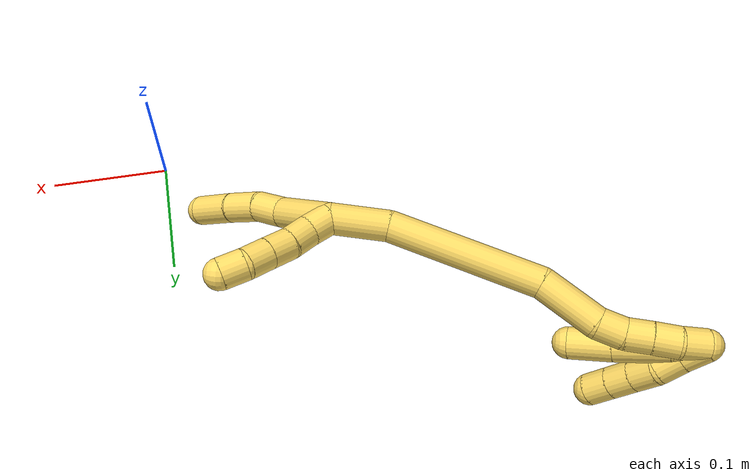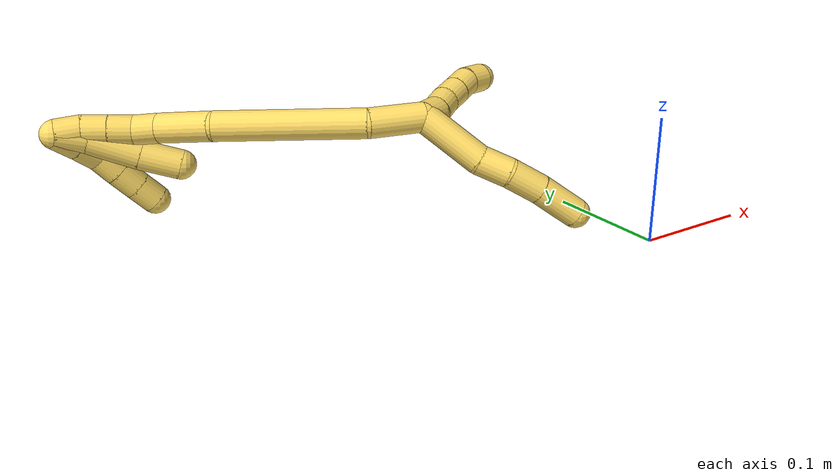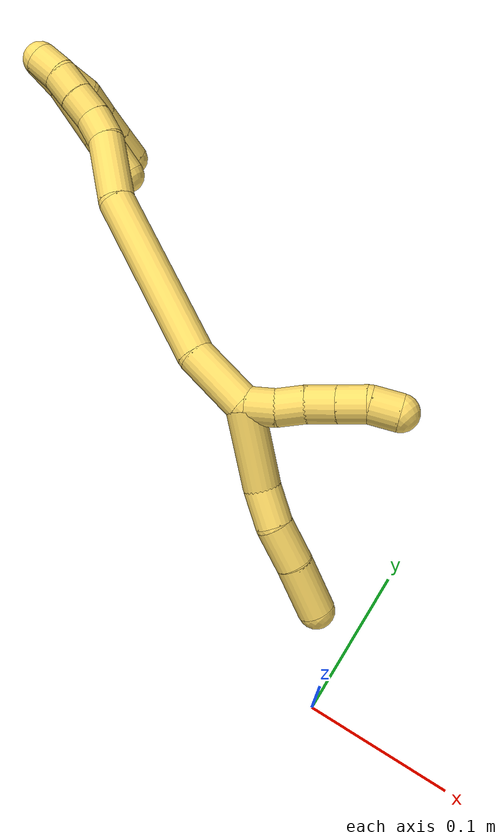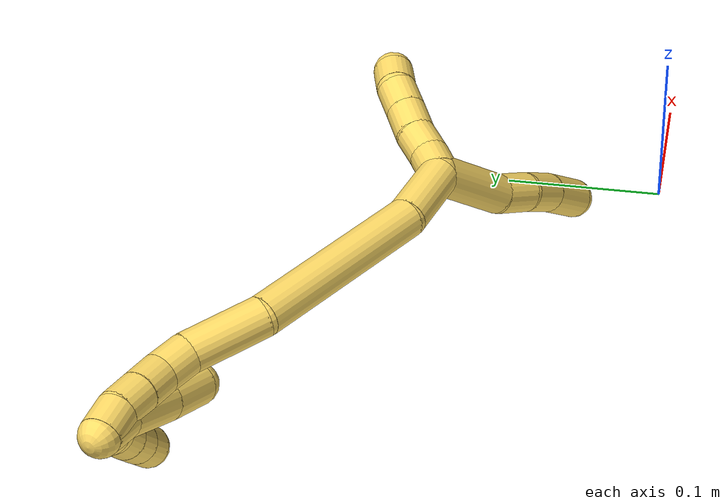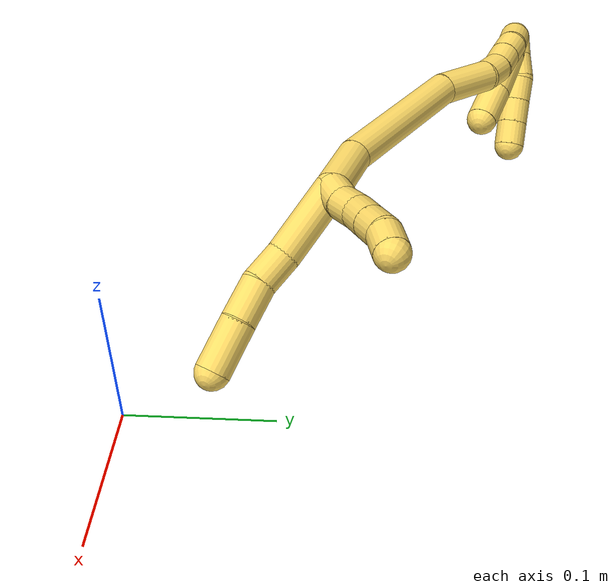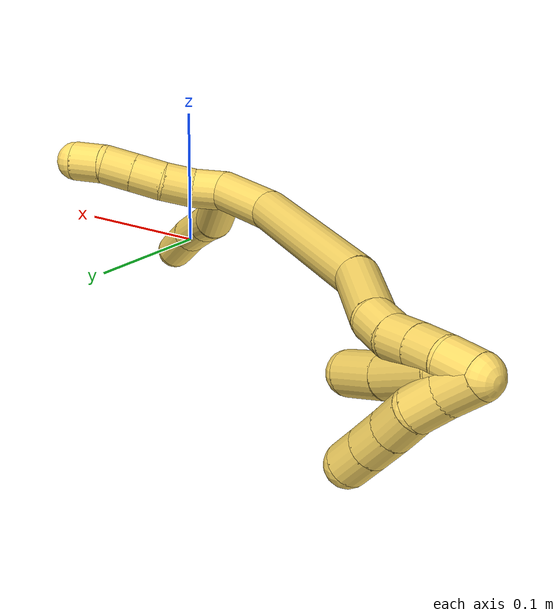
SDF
<sdf version="1.7">
 <world name="default">
  <model name="5">
   <static>0</static>
   <link name="5">
    <collision name="collision-cylinder-e_1_2_8">
     <pose>-0.001545 -0.018643 -0.021332 2.42337 -0.054493 -0.144946</pose>
     <geometry><cylinder><radius>0.0125</radius><length>0.056744</length></cylinder></geometry>
     <surface>
      <friction><ode><mu>1.16</mu><mu2>1.16</mu2><slip1>0</slip1><slip2>0</slip2></ode></friction>
      <contact><ode><kp>1e+06</kp><kd>1</kd><max_vel>0</max_vel><min_depth>0.001</min_depth></ode></contact>
     </surface>
    </collision>
    <visual name="visual-cylinder-e_1_2_8">
     <pose>-0.001545 -0.018643 -0.021332 2.42337 -0.054493 -0.144946</pose>
     <geometry><cylinder><radius>0.0125</radius><length>0.056744</length></cylinder></geometry>
     <material><ambient>1 0.858824 0.4 1</ambient></material>
    </visual>
    <collision name="collision-cylinder-e_2_8_9">
     <pose>-0.002197 -0.043506 -0.054179 2.64631 0.068202 0.268238</pose>
     <geometry><cylinder><radius>0.0125</radius><length>0.026238</length></cylinder></geometry>
     <surface>
      <friction><ode><mu>1.16</mu><mu2>1.16</mu2><slip1>0</slip1><slip2>0</slip2></ode></friction>
      <contact><ode><kp>1e+06</kp><kd>1</kd><max_vel>0</max_vel><min_depth>0.001</min_depth></ode></contact>
     </surface>
    </collision>
    <visual name="visual-cylinder-e_2_8_9">
     <pose>-0.002197 -0.043506 -0.054179 2.64631 0.068202 0.268238</pose>
     <geometry><cylinder><radius>0.0125</radius><length>0.026238</length></cylinder></geometry>
     <material><ambient>1 0.858824 0.4 1</ambient></material>
    </visual>
    <collision name="collision-cylinder-e_3_9_10">
     <pose>-0.003573 -0.056381 -0.078698 2.66857 -0.154173 -0.620252</pose>
     <geometry><cylinder><radius>0.0125</radius><length>0.029564</length></cylinder></geometry>
     <surface>
      <friction><ode><mu>1.16</mu><mu2>1.16</mu2><slip1>0</slip1><slip2>0</slip2></ode></friction>
      <contact><ode><kp>1e+06</kp><kd>1</kd><max_vel>0</max_vel><min_depth>0.001</min_depth></ode></contact>
     </surface>
    </collision>
    <visual name="visual-cylinder-e_3_9_10">
     <pose>-0.003573 -0.056381 -0.078698 2.66857 -0.154173 -0.620252</pose>
     <geometry><cylinder><radius>0.0125</radius><length>0.029564</length></cylinder></geometry>
     <material><ambient>1 0.858824 0.4 1</ambient></material>
    </visual>
    <collision name="collision-cylinder-e_4_10_6">
     <pose>-0.009367 -0.072792 -0.107292 2.58245 -0.189347 -0.638857</pose>
     <geometry><cylinder><radius>0.0125</radius><length>0.037454</length></cylinder></geometry>
     <surface>
      <friction><ode><mu>1.16</mu><mu2>1.16</mu2><slip1>0</slip1><slip2>0</slip2></ode></friction>
      <contact><ode><kp>1e+06</kp><kd>1</kd><max_vel>0</max_vel><min_depth>0.001</min_depth></ode></contact>
     </surface>
    </collision>
    <visual name="visual-cylinder-e_4_10_6">
     <pose>-0.009367 -0.072792 -0.107292 2.58245 -0.189347 -0.638857</pose>
     <geometry><cylinder><radius>0.0125</radius><length>0.037454</length></cylinder></geometry>
     <material><ambient>1 0.858824 0.4 1</ambient></material>
    </visual>
    <collision name="collision-cylinder-e_1_2_11">
     <pose>-0.004869 0.004796 -0.0073 -2.56032 -0.508544 1.43074</pose>
     <geometry><cylinder><radius>0.0125</radius><length>0.02</length></cylinder></geometry>
     <surface>
      <friction><ode><mu>1.16</mu><mu2>1.16</mu2><slip1>0</slip1><slip2>0</slip2></ode></friction>
      <contact><ode><kp>1e+06</kp><kd>1</kd><max_vel>0</max_vel><min_depth>0.001</min_depth></ode></contact>
     </surface>
    </collision>
    <visual name="visual-cylinder-e_1_2_11">
     <pose>-0.004869 0.004796 -0.0073 -2.56032 -0.508544 1.43074</pose>
     <geometry><cylinder><radius>0.0125</radius><length>0.02</length></cylinder></geometry>
     <material><ambient>1 0.858824 0.4 1</ambient></material>
    </visual>
    <collision name="collision-cylinder-e_2_11_12">
     <pose>-0.014234 0.016295 -0.020504 -2.29293 -0.466352 0.967974</pose>
     <geometry><cylinder><radius>0.0125</radius><length>0.02</length></cylinder></geometry>
     <surface>
      <friction><ode><mu>1.16</mu><mu2>1.16</mu2><slip1>0</slip1><slip2>0</slip2></ode></friction>
      <contact><ode><kp>1e+06</kp><kd>1</kd><max_vel>0</max_vel><min_depth>0.001</min_depth></ode></contact>
     </surface>
    </collision>
    <visual name="visual-cylinder-e_2_11_12">
     <pose>-0.014234 0.016295 -0.020504 -2.29293 -0.466352 0.967974</pose>
     <geometry><cylinder><radius>0.0125</radius><length>0.02</length></cylinder></geometry>
     <material><ambient>1 0.858824 0.4 1</ambient></material>
    </visual>
    <collision name="collision-cylinder-e_3_12_13">
     <pose>-0.022191 0.029347 -0.033315 -2.39824 -0.353363 0.859045</pose>
     <geometry><cylinder><radius>0.0125</radius><length>0.02</length></cylinder></geometry>
     <surface>
      <friction><ode><mu>1.16</mu><mu2>1.16</mu2><slip1>0</slip1><slip2>0</slip2></ode></friction>
      <contact><ode><kp>1e+06</kp><kd>1</kd><max_vel>0</max_vel><min_depth>0.001</min_depth></ode></contact>
     </surface>
    </collision>
    <visual name="visual-cylinder-e_3_12_13">
     <pose>-0.022191 0.029347 -0.033315 -2.39824 -0.353363 0.859045</pose>
     <geometry><cylinder><radius>0.0125</radius><length>0.02</length></cylinder></geometry>
     <material><ambient>1 0.858824 0.4 1</ambient></material>
    </visual>
    <collision name="collision-cylinder-e_4_13_14">
     <pose>-0.029188 0.042093 -0.047047 -2.38863 -0.361477 0.865941</pose>
     <geometry><cylinder><radius>0.0125</radius><length>0.02</length></cylinder></geometry>
     <surface>
      <friction><ode><mu>1.16</mu><mu2>1.16</mu2><slip1>0</slip1><slip2>0</slip2></ode></friction>
      <contact><ode><kp>1e+06</kp><kd>1</kd><max_vel>0</max_vel><min_depth>0.001</min_depth></ode></contact>
     </surface>
    </collision>
    <visual name="visual-cylinder-e_4_13_14">
     <pose>-0.029188 0.042093 -0.047047 -2.38863 -0.361477 0.865941</pose>
     <geometry><cylinder><radius>0.0125</radius><length>0.02</length></cylinder></geometry>
     <material><ambient>1 0.858824 0.4 1</ambient></material>
    </visual>
    <collision name="collision-cylinder-e_5_14_5">
     <pose>-0.036551 0.052197 -0.062335 -2.72857 -0.392652 1.51885</pose>
     <geometry><cylinder><radius>0.0125</radius><length>0.02</length></cylinder></geometry>
     <surface>
      <friction><ode><mu>1.16</mu><mu2>1.16</mu2><slip1>0</slip1><slip2>0</slip2></ode></friction>
      <contact><ode><kp>1e+06</kp><kd>1</kd><max_vel>0</max_vel><min_depth>0.001</min_depth></ode></contact>
     </surface>
    </collision>
    <visual name="visual-cylinder-e_5_14_5">
     <pose>-0.036551 0.052197 -0.062335 -2.72857 -0.392652 1.51885</pose>
     <geometry><cylinder><radius>0.0125</radius><length>0.02</length></cylinder></geometry>
     <material><ambient>1 0.858824 0.4 1</ambient></material>
    </visual>
    <collision name="collision-cylinder-e_1_2_15">
     <pose>-0.001291 -0.001936 0.02315 0.08345 -0.055517 -0.002318</pose>
     <geometry><cylinder><radius>0.0125</radius><length>0.046533</length></cylinder></geometry>
     <surface>
      <friction><ode><mu>1.16</mu><mu2>1.16</mu2><slip1>0</slip1><slip2>0</slip2></ode></friction>
      <contact><ode><kp>1e+06</kp><kd>1</kd><max_vel>0</max_vel><min_depth>0.001</min_depth></ode></contact>
     </surface>
    </collision>
    <visual name="visual-cylinder-e_1_2_15">
     <pose>-0.001291 -0.001936 0.02315 0.08345 -0.055517 -0.002318</pose>
     <geometry><cylinder><radius>0.0125</radius><length>0.046533</length></cylinder></geometry>
     <material><ambient>1 0.858824 0.4 1</ambient></material>
    </visual>
    <collision name="collision-cylinder-e_2_15_16">
     <pose>-0.018307 0.002634 0.105438 -0.10958 -0.258397 0.014251</pose>
     <geometry><cylinder><radius>0.0125</radius><length>0.123076</length></cylinder></geometry>
     <surface>
      <friction><ode><mu>1.16</mu><mu2>1.16</mu2><slip1>0</slip1><slip2>0</slip2></ode></friction>
      <contact><ode><kp>1e+06</kp><kd>1</kd><max_vel>0</max_vel><min_depth>0.001</min_depth></ode></contact>
     </surface>
    </collision>
    <visual name="visual-cylinder-e_2_15_16">
     <pose>-0.018307 0.002634 0.105438 -0.10958 -0.258397 0.014251</pose>
     <geometry><cylinder><radius>0.0125</radius><length>0.123076</length></cylinder></geometry>
     <material><ambient>1 0.858824 0.4 1</ambient></material>
    </visual>
    <collision name="collision-cylinder-e_3_16_17">
     <pose>-0.046334 0.013952 0.18544 -0.22668 -0.521509 0.060726</pose>
     <geometry><cylinder><radius>0.0125</radius><length>0.049389</length></cylinder></geometry>
     <surface>
      <friction><ode><mu>1.16</mu><mu2>1.16</mu2><slip1>0</slip1><slip2>0</slip2></ode></friction>
      <contact><ode><kp>1e+06</kp><kd>1</kd><max_vel>0</max_vel><min_depth>0.001</min_depth></ode></contact>
     </surface>
    </collision>
    <visual name="visual-cylinder-e_3_16_17">
     <pose>-0.046334 0.013952 0.18544 -0.22668 -0.521509 0.060726</pose>
     <geometry><cylinder><radius>0.0125</radius><length>0.049389</length></cylinder></geometry>
     <material><ambient>1 0.858824 0.4 1</ambient></material>
    </visual>
    <collision name="collision-cylinder-e_4_17_18">
     <pose>-0.061596 0.019317 0.216317 -0.055127 -0.286908 0.007965</pose>
     <geometry><cylinder><radius>0.0125</radius><length>0.020912</length></cylinder></geometry>
     <surface>
      <friction><ode><mu>1.16</mu><mu2>1.16</mu2><slip1>0</slip1><slip2>0</slip2></ode></friction>
      <contact><ode><kp>1e+06</kp><kd>1</kd><max_vel>0</max_vel><min_depth>0.001</min_depth></ode></contact>
     </surface>
    </collision>
    <visual name="visual-cylinder-e_4_17_18">
     <pose>-0.061596 0.019317 0.216317 -0.055127 -0.286908 0.007965</pose>
     <geometry><cylinder><radius>0.0125</radius><length>0.020912</length></cylinder></geometry>
     <material><ambient>1 0.858824 0.4 1</ambient></material>
    </visual>
    <collision name="collision-cylinder-e_5_18_19">
     <pose>-0.065022 0.020425 0.236331 -0.05546 -0.0466 0.001293</pose>
     <geometry><cylinder><radius>0.0125</radius><length>0.020053</length></cylinder></geometry>
     <surface>
      <friction><ode><mu>1.16</mu><mu2>1.16</mu2><slip1>0</slip1><slip2>0</slip2></ode></friction>
      <contact><ode><kp>1e+06</kp><kd>1</kd><max_vel>0</max_vel><min_depth>0.001</min_depth></ode></contact>
     </surface>
    </collision>
    <visual name="visual-cylinder-e_5_18_19">
     <pose>-0.065022 0.020425 0.236331 -0.05546 -0.0466 0.001293</pose>
     <geometry><cylinder><radius>0.0125</radius><length>0.020053</length></cylinder></geometry>
     <material><ambient>1 0.858824 0.4 1</ambient></material>
    </visual>
    <collision name="collision-cylinder-e_6_19_20">
     <pose>-0.06627 0.02143 0.256309 -0.045042 -0.078071 0.001759</pose>
     <geometry><cylinder><radius>0.0125</radius><length>0.020037</length></cylinder></geometry>
     <surface>
      <friction><ode><mu>1.16</mu><mu2>1.16</mu2><slip1>0</slip1><slip2>0</slip2></ode></friction>
      <contact><ode><kp>1e+06</kp><kd>1</kd><max_vel>0</max_vel><min_depth>0.001</min_depth></ode></contact>
     </surface>
    </collision>
    <visual name="visual-cylinder-e_6_19_20">
     <pose>-0.06627 0.02143 0.256309 -0.045042 -0.078071 0.001759</pose>
     <geometry><cylinder><radius>0.0125</radius><length>0.020037</length></cylinder></geometry>
     <material><ambient>1 0.858824 0.4 1</ambient></material>
    </visual>
    <collision name="collision-cylinder-e_7_20_1">
     <pose>-0.067399 0.02025 0.276147 0.163807 -0.034815 -0.002858</pose>
     <geometry><cylinder><radius>0.0125</radius><length>0.02</length></cylinder></geometry>
     <surface>
      <friction><ode><mu>1.16</mu><mu2>1.16</mu2><slip1>0</slip1><slip2>0</slip2></ode></friction>
      <contact><ode><kp>1e+06</kp><kd>1</kd><max_vel>0</max_vel><min_depth>0.001</min_depth></ode></contact>
     </surface>
    </collision>
    <visual name="visual-cylinder-e_7_20_1">
     <pose>-0.067399 0.02025 0.276147 0.163807 -0.034815 -0.002858</pose>
     <geometry><cylinder><radius>0.0125</radius><length>0.02</length></cylinder></geometry>
     <material><ambient>1 0.858824 0.4 1</ambient></material>
    </visual>
    <collision name="collision-cylinder-e_1_1_21">
     <pose>-0.069824 0.017206 0.274048 3.02392 -0.170767 -1.9361</pose>
     <geometry><cylinder><radius>0.0125</radius><length>0.024442</length></cylinder></geometry>
     <surface>
      <friction><ode><mu>1.16</mu><mu2>1.16</mu2><slip1>0</slip1><slip2>0</slip2></ode></friction>
      <contact><ode><kp>1e+06</kp><kd>1</kd><max_vel>0</max_vel><min_depth>0.001</min_depth></ode></contact>
     </surface>
    </collision>
    <visual name="visual-cylinder-e_1_1_21">
     <pose>-0.069824 0.017206 0.274048 3.02392 -0.170767 -1.9361</pose>
     <geometry><cylinder><radius>0.0125</radius><length>0.024442</length></cylinder></geometry>
     <material><ambient>1 0.858824 0.4 1</ambient></material>
    </visual>
    <collision name="collision-cylinder-e_2_21_22">
     <pose>-0.075071 0.009613 0.242188 2.84051 -0.150957 -0.924959</pose>
     <geometry><cylinder><radius>0.0125</radius><length>0.042154</length></cylinder></geometry>
     <surface>
      <friction><ode><mu>1.16</mu><mu2>1.16</mu2><slip1>0</slip1><slip2>0</slip2></ode></friction>
      <contact><ode><kp>1e+06</kp><kd>1</kd><max_vel>0</max_vel><min_depth>0.001</min_depth></ode></contact>
     </surface>
    </collision>
    <visual name="visual-cylinder-e_2_21_22">
     <pose>-0.075071 0.009613 0.242188 2.84051 -0.150957 -0.924959</pose>
     <geometry><cylinder><radius>0.0125</radius><length>0.042154</length></cylinder></geometry>
     <material><ambient>1 0.858824 0.4 1</ambient></material>
    </visual>
    <collision name="collision-cylinder-e_3_22_4">
     <pose>-0.079729 -0.00071 0.206176 2.88985 -0.089237 -0.6784</pose>
     <geometry><cylinder><radius>0.0125</radius><length>0.033404</length></cylinder></geometry>
     <surface>
      <friction><ode><mu>1.16</mu><mu2>1.16</mu2><slip1>0</slip1><slip2>0</slip2></ode></friction>
      <contact><ode><kp>1e+06</kp><kd>1</kd><max_vel>0</max_vel><min_depth>0.001</min_depth></ode></contact>
     </surface>
    </collision>
    <visual name="visual-cylinder-e_3_22_4">
     <pose>-0.079729 -0.00071 0.206176 2.88985 -0.089237 -0.6784</pose>
     <geometry><cylinder><radius>0.0125</radius><length>0.033404</length></cylinder></geometry>
     <material><ambient>1 0.858824 0.4 1</ambient></material>
    </visual>
    <collision name="collision-cylinder-e_1_1_23">
     <pose>-0.073371 0.016062 0.278144 2.82715 -0.597248 -2.19046</pose>
     <geometry><cylinder><radius>0.0125</radius><length>0.02</length></cylinder></geometry>
     <surface>
      <friction><ode><mu>1.16</mu><mu2>1.16</mu2><slip1>0</slip1><slip2>0</slip2></ode></friction>
      <contact><ode><kp>1e+06</kp><kd>1</kd><max_vel>0</max_vel><min_depth>0.001</min_depth></ode></contact>
     </surface>
    </collision>
    <visual name="visual-cylinder-e_1_1_23">
     <pose>-0.073371 0.016062 0.278144 2.82715 -0.597248 -2.19046</pose>
     <geometry><cylinder><radius>0.0125</radius><length>0.02</length></cylinder></geometry>
     <material><ambient>1 0.858824 0.4 1</ambient></material>
    </visual>
    <collision name="collision-cylinder-e_2_23_24">
     <pose>-0.085207 0.01093 0.262879 2.80682 -0.670295 -2.23822</pose>
     <geometry><cylinder><radius>0.0125</radius><length>0.02</length></cylinder></geometry>
     <surface>
      <friction><ode><mu>1.16</mu><mu2>1.16</mu2><slip1>0</slip1><slip2>0</slip2></ode></friction>
      <contact><ode><kp>1e+06</kp><kd>1</kd><max_vel>0</max_vel><min_depth>0.001</min_depth></ode></contact>
     </surface>
    </collision>
    <visual name="visual-cylinder-e_2_23_24">
     <pose>-0.085207 0.01093 0.262879 2.80682 -0.670295 -2.23822</pose>
     <geometry><cylinder><radius>0.0125</radius><length>0.02</length></cylinder></geometry>
     <material><ambient>1 0.858824 0.4 1</ambient></material>
    </visual>
    <collision name="collision-cylinder-e_3_24_25">
     <pose>-0.09627 0.003199 0.248415 2.51101 -0.506395 -1.34128</pose>
     <geometry><cylinder><radius>0.0125</radius><length>0.02</length></cylinder></geometry>
     <surface>
      <friction><ode><mu>1.16</mu><mu2>1.16</mu2><slip1>0</slip1><slip2>0</slip2></ode></friction>
      <contact><ode><kp>1e+06</kp><kd>1</kd><max_vel>0</max_vel><min_depth>0.001</min_depth></ode></contact>
     </surface>
    </collision>
    <visual name="visual-cylinder-e_3_24_25">
     <pose>-0.09627 0.003199 0.248415 2.51101 -0.506395 -1.34128</pose>
     <geometry><cylinder><radius>0.0125</radius><length>0.02</length></cylinder></geometry>
     <material><ambient>1 0.858824 0.4 1</ambient></material>
    </visual>
    <collision name="collision-cylinder-e_4_25_26">
     <pose>-0.106018 -0.006798 0.234101 2.55288 -0.511877 -1.42416</pose>
     <geometry><cylinder><radius>0.0125</radius><length>0.02</length></cylinder></geometry>
     <surface>
      <friction><ode><mu>1.16</mu><mu2>1.16</mu2><slip1>0</slip1><slip2>0</slip2></ode></friction>
      <contact><ode><kp>1e+06</kp><kd>1</kd><max_vel>0</max_vel><min_depth>0.001</min_depth></ode></contact>
     </surface>
    </collision>
    <visual name="visual-cylinder-e_4_25_26">
     <pose>-0.106018 -0.006798 0.234101 2.55288 -0.511877 -1.42416</pose>
     <geometry><cylinder><radius>0.0125</radius><length>0.02</length></cylinder></geometry>
     <material><ambient>1 0.858824 0.4 1</ambient></material>
    </visual>
    <collision name="collision-cylinder-e_5_26_3">
     <pose>-0.11583 -0.016406 0.219561 2.56236 -0.513704 -1.4449</pose>
     <geometry><cylinder><radius>0.0125</radius><length>0.02</length></cylinder></geometry>
     <surface>
      <friction><ode><mu>1.16</mu><mu2>1.16</mu2><slip1>0</slip1><slip2>0</slip2></ode></friction>
      <contact><ode><kp>1e+06</kp><kd>1</kd><max_vel>0</max_vel><min_depth>0.001</min_depth></ode></contact>
     </surface>
    </collision>
    <visual name="visual-cylinder-e_5_26_3">
     <pose>-0.11583 -0.016406 0.219561 2.56236 -0.513704 -1.4449</pose>
     <geometry><cylinder><radius>0.0125</radius><length>0.02</length></cylinder></geometry>
     <material><ambient>1 0.858824 0.4 1</ambient></material>
    </visual>
    <collision name="collision-sphere-3">
     <pose>-0.120744 -0.021174 0.212273 0 -0 0</pose>
     <geometry><sphere><radius>0.0125</radius></sphere></geometry>
     <surface>
      <friction><ode><mu>1.16</mu><mu2>1.16</mu2><slip1>0</slip1><slip2>0</slip2></ode></friction>
      <contact><ode><kp>1e+06</kp><kd>1</kd><max_vel>0</max_vel><min_depth>0.001</min_depth></ode></contact>
     </surface>
    </collision>
    <visual name="visual-sphere-3">
     <pose>-0.120744 -0.021174 0.212273 0 -0 0</pose>
     <geometry><sphere><radius>0.0125</radius></sphere></geometry>
     <material><ambient>1 0.858824 0.4 1</ambient></material>
    </visual>
    <collision name="collision-sphere-26">
     <pose>-0.110916 -0.011639 0.22685 0 -0 0</pose>
     <geometry><sphere><radius>0.0125</radius></sphere></geometry>
     <surface>
      <friction><ode><mu>1.16</mu><mu2>1.16</mu2><slip1>0</slip1><slip2>0</slip2></ode></friction>
      <contact><ode><kp>1e+06</kp><kd>1</kd><max_vel>0</max_vel><min_depth>0.001</min_depth></ode></contact>
     </surface>
    </collision>
    <visual name="visual-sphere-26">
     <pose>-0.110916 -0.011639 0.22685 0 -0 0</pose>
     <geometry><sphere><radius>0.0125</radius></sphere></geometry>
     <material><ambient>1 0.858824 0.4 1</ambient></material>
    </visual>
    <collision name="collision-sphere-25">
     <pose>-0.10112 -0.001957 0.241351 0 -0 0</pose>
     <geometry><sphere><radius>0.0125</radius></sphere></geometry>
     <surface>
      <friction><ode><mu>1.16</mu><mu2>1.16</mu2><slip1>0</slip1><slip2>0</slip2></ode></friction>
      <contact><ode><kp>1e+06</kp><kd>1</kd><max_vel>0</max_vel><min_depth>0.001</min_depth></ode></contact>
     </surface>
    </collision>
    <visual name="visual-sphere-25">
     <pose>-0.10112 -0.001957 0.241351 0 -0 0</pose>
     <geometry><sphere><radius>0.0125</radius></sphere></geometry>
     <material><ambient>1 0.858824 0.4 1</ambient></material>
    </visual>
    <collision name="collision-sphere-24">
     <pose>-0.091419 0.008356 0.255478 0 -0 0</pose>
     <geometry><sphere><radius>0.0125</radius></sphere></geometry>
     <surface>
      <friction><ode><mu>1.16</mu><mu2>1.16</mu2><slip1>0</slip1><slip2>0</slip2></ode></friction>
      <contact><ode><kp>1e+06</kp><kd>1</kd><max_vel>0</max_vel><min_depth>0.001</min_depth></ode></contact>
     </surface>
    </collision>
    <visual name="visual-sphere-24">
     <pose>-0.091419 0.008356 0.255478 0 -0 0</pose>
     <geometry><sphere><radius>0.0125</radius></sphere></geometry>
     <material><ambient>1 0.858824 0.4 1</ambient></material>
    </visual>
    <collision name="collision-sphere-23">
     <pose>-0.078995 0.013505 0.27028 0 -0 0</pose>
     <geometry><sphere><radius>0.0125</radius></sphere></geometry>
     <surface>
      <friction><ode><mu>1.16</mu><mu2>1.16</mu2><slip1>0</slip1><slip2>0</slip2></ode></friction>
      <contact><ode><kp>1e+06</kp><kd>1</kd><max_vel>0</max_vel><min_depth>0.001</min_depth></ode></contact>
     </surface>
    </collision>
    <visual name="visual-sphere-23">
     <pose>-0.078995 0.013505 0.27028 0 -0 0</pose>
     <geometry><sphere><radius>0.0125</radius></sphere></geometry>
     <material><ambient>1 0.858824 0.4 1</ambient></material>
    </visual>
    <collision name="collision-sphere-4">
     <pose>-0.081217 -0.004854 0.190065 0 -0 0</pose>
     <geometry><sphere><radius>0.0125</radius></sphere></geometry>
     <surface>
      <friction><ode><mu>1.16</mu><mu2>1.16</mu2><slip1>0</slip1><slip2>0</slip2></ode></friction>
      <contact><ode><kp>1e+06</kp><kd>1</kd><max_vel>0</max_vel><min_depth>0.001</min_depth></ode></contact>
     </surface>
    </collision>
    <visual name="visual-sphere-4">
     <pose>-0.081217 -0.004854 0.190065 0 -0 0</pose>
     <geometry><sphere><radius>0.0125</radius></sphere></geometry>
     <material><ambient>1 0.858824 0.4 1</ambient></material>
    </visual>
    <collision name="collision-sphere-22">
     <pose>-0.07824 0.003434 0.222288 0 -0 0</pose>
     <geometry><sphere><radius>0.0125</radius></sphere></geometry>
     <surface>
      <friction><ode><mu>1.16</mu><mu2>1.16</mu2><slip1>0</slip1><slip2>0</slip2></ode></friction>
      <contact><ode><kp>1e+06</kp><kd>1</kd><max_vel>0</max_vel><min_depth>0.001</min_depth></ode></contact>
     </surface>
    </collision>
    <visual name="visual-sphere-22">
     <pose>-0.07824 0.003434 0.222288 0 -0 0</pose>
     <geometry><sphere><radius>0.0125</radius></sphere></geometry>
     <material><ambient>1 0.858824 0.4 1</ambient></material>
    </visual>
    <collision name="collision-sphere-21">
     <pose>-0.071901 0.015792 0.262088 0 -0 0</pose>
     <geometry><sphere><radius>0.0125</radius></sphere></geometry>
     <surface>
      <friction><ode><mu>1.16</mu><mu2>1.16</mu2><slip1>0</slip1><slip2>0</slip2></ode></friction>
      <contact><ode><kp>1e+06</kp><kd>1</kd><max_vel>0</max_vel><min_depth>0.001</min_depth></ode></contact>
     </surface>
    </collision>
    <visual name="visual-sphere-21">
     <pose>-0.071901 0.015792 0.262088 0 -0 0</pose>
     <geometry><sphere><radius>0.0125</radius></sphere></geometry>
     <material><ambient>1 0.858824 0.4 1</ambient></material>
    </visual>
    <collision name="collision-sphere-1">
     <pose>-0.067748 0.01862 0.286007 0 -0 0</pose>
     <geometry><sphere><radius>0.0125</radius></sphere></geometry>
     <surface>
      <friction><ode><mu>1.16</mu><mu2>1.16</mu2><slip1>0</slip1><slip2>0</slip2></ode></friction>
      <contact><ode><kp>1e+06</kp><kd>1</kd><max_vel>0</max_vel><min_depth>0.001</min_depth></ode></contact>
     </surface>
    </collision>
    <visual name="visual-sphere-1">
     <pose>-0.067748 0.01862 0.286007 0 -0 0</pose>
     <geometry><sphere><radius>0.0125</radius></sphere></geometry>
     <material><ambient>1 0.858824 0.4 1</ambient></material>
    </visual>
    <collision name="collision-sphere-11">
     <pose>-0.009738 0.009592 -0.0146 0 -0 0</pose>
     <geometry><sphere><radius>0.0125</radius></sphere></geometry>
     <surface>
      <friction><ode><mu>1.16</mu><mu2>1.16</mu2><slip1>0</slip1><slip2>0</slip2></ode></friction>
      <contact><ode><kp>1e+06</kp><kd>1</kd><max_vel>0</max_vel><min_depth>0.001</min_depth></ode></contact>
     </surface>
    </collision>
    <visual name="visual-sphere-11">
     <pose>-0.009738 0.009592 -0.0146 0 -0 0</pose>
     <geometry><sphere><radius>0.0125</radius></sphere></geometry>
     <material><ambient>1 0.858824 0.4 1</ambient></material>
    </visual>
    <collision name="collision-sphere-6">
     <pose>-0.012892 -0.082548 -0.122883 0 -0 0</pose>
     <geometry><sphere><radius>0.0125</radius></sphere></geometry>
     <surface>
      <friction><ode><mu>1.16</mu><mu2>1.16</mu2><slip1>0</slip1><slip2>0</slip2></ode></friction>
      <contact><ode><kp>1e+06</kp><kd>1</kd><max_vel>0</max_vel><min_depth>0.001</min_depth></ode></contact>
     </surface>
    </collision>
    <visual name="visual-sphere-6">
     <pose>-0.012892 -0.082548 -0.122883 0 -0 0</pose>
     <geometry><sphere><radius>0.0125</radius></sphere></geometry>
     <material><ambient>1 0.858824 0.4 1</ambient></material>
    </visual>
    <collision name="collision-sphere-10">
     <pose>-0.005842 -0.063036 -0.091701 0 -0 0</pose>
     <geometry><sphere><radius>0.0125</radius></sphere></geometry>
     <surface>
      <friction><ode><mu>1.16</mu><mu2>1.16</mu2><slip1>0</slip1><slip2>0</slip2></ode></friction>
      <contact><ode><kp>1e+06</kp><kd>1</kd><max_vel>0</max_vel><min_depth>0.001</min_depth></ode></contact>
     </surface>
    </collision>
    <visual name="visual-sphere-10">
     <pose>-0.005842 -0.063036 -0.091701 0 -0 0</pose>
     <geometry><sphere><radius>0.0125</radius></sphere></geometry>
     <material><ambient>1 0.858824 0.4 1</ambient></material>
    </visual>
    <collision name="collision-sphere-9">
     <pose>-0.001303 -0.049727 -0.065695 0 -0 0</pose>
     <geometry><sphere><radius>0.0125</radius></sphere></geometry>
     <surface>
      <friction><ode><mu>1.16</mu><mu2>1.16</mu2><slip1>0</slip1><slip2>0</slip2></ode></friction>
      <contact><ode><kp>1e+06</kp><kd>1</kd><max_vel>0</max_vel><min_depth>0.001</min_depth></ode></contact>
     </surface>
    </collision>
    <visual name="visual-sphere-9">
     <pose>-0.001303 -0.049727 -0.065695 0 -0 0</pose>
     <geometry><sphere><radius>0.0125</radius></sphere></geometry>
     <material><ambient>1 0.858824 0.4 1</ambient></material>
    </visual>
    <collision name="collision-sphere-2">
     <geometry><sphere><radius>0.0125</radius></sphere></geometry>
     <surface>
      <friction><ode><mu>1.16</mu><mu2>1.16</mu2><slip1>0</slip1><slip2>0</slip2></ode></friction>
      <contact><ode><kp>1e+06</kp><kd>1</kd><max_vel>0</max_vel><min_depth>0.001</min_depth></ode></contact>
     </surface>
    </collision>
    <visual name="visual-sphere-2">
     <geometry><sphere><radius>0.0125</radius></sphere></geometry>
     <material><ambient>1 0.858824 0.4 1</ambient></material>
    </visual>
    <collision name="collision-sphere-19">
     <pose>-0.065489 0.02098 0.246331 0 -0 0</pose>
     <geometry><sphere><radius>0.0125</radius></sphere></geometry>
     <surface>
      <friction><ode><mu>1.16</mu><mu2>1.16</mu2><slip1>0</slip1><slip2>0</slip2></ode></friction>
      <contact><ode><kp>1e+06</kp><kd>1</kd><max_vel>0</max_vel><min_depth>0.001</min_depth></ode></contact>
     </surface>
    </collision>
    <visual name="visual-sphere-19">
     <pose>-0.065489 0.02098 0.246331 0 -0 0</pose>
     <geometry><sphere><radius>0.0125</radius></sphere></geometry>
     <material><ambient>1 0.858824 0.4 1</ambient></material>
    </visual>
    <collision name="collision-sphere-8">
     <pose>-0.003091 -0.037285 -0.042664 0 -0 0</pose>
     <geometry><sphere><radius>0.0125</radius></sphere></geometry>
     <surface>
      <friction><ode><mu>1.16</mu><mu2>1.16</mu2><slip1>0</slip1><slip2>0</slip2></ode></friction>
      <contact><ode><kp>1e+06</kp><kd>1</kd><max_vel>0</max_vel><min_depth>0.001</min_depth></ode></contact>
     </surface>
    </collision>
    <visual name="visual-sphere-8">
     <pose>-0.003091 -0.037285 -0.042664 0 -0 0</pose>
     <geometry><sphere><radius>0.0125</radius></sphere></geometry>
     <material><ambient>1 0.858824 0.4 1</ambient></material>
    </visual>
    <collision name="collision-sphere-12">
     <pose>-0.018731 0.022997 -0.026408 0 -0 0</pose>
     <geometry><sphere><radius>0.0125</radius></sphere></geometry>
     <surface>
      <friction><ode><mu>1.16</mu><mu2>1.16</mu2><slip1>0</slip1><slip2>0</slip2></ode></friction>
      <contact><ode><kp>1e+06</kp><kd>1</kd><max_vel>0</max_vel><min_depth>0.001</min_depth></ode></contact>
     </surface>
    </collision>
    <visual name="visual-sphere-12">
     <pose>-0.018731 0.022997 -0.026408 0 -0 0</pose>
     <geometry><sphere><radius>0.0125</radius></sphere></geometry>
     <material><ambient>1 0.858824 0.4 1</ambient></material>
    </visual>
    <collision name="collision-sphere-13">
     <pose>-0.025652 0.035696 -0.040222 0 -0 0</pose>
     <geometry><sphere><radius>0.0125</radius></sphere></geometry>
     <surface>
      <friction><ode><mu>1.16</mu><mu2>1.16</mu2><slip1>0</slip1><slip2>0</slip2></ode></friction>
      <contact><ode><kp>1e+06</kp><kd>1</kd><max_vel>0</max_vel><min_depth>0.001</min_depth></ode></contact>
     </surface>
    </collision>
    <visual name="visual-sphere-13">
     <pose>-0.025652 0.035696 -0.040222 0 -0 0</pose>
     <geometry><sphere><radius>0.0125</radius></sphere></geometry>
     <material><ambient>1 0.858824 0.4 1</ambient></material>
    </visual>
    <collision name="collision-sphere-14">
     <pose>-0.032725 0.048489 -0.053873 0 -0 0</pose>
     <geometry><sphere><radius>0.0125</radius></sphere></geometry>
     <surface>
      <friction><ode><mu>1.16</mu><mu2>1.16</mu2><slip1>0</slip1><slip2>0</slip2></ode></friction>
      <contact><ode><kp>1e+06</kp><kd>1</kd><max_vel>0</max_vel><min_depth>0.001</min_depth></ode></contact>
     </surface>
    </collision>
    <visual name="visual-sphere-14">
     <pose>-0.032725 0.048489 -0.053873 0 -0 0</pose>
     <geometry><sphere><radius>0.0125</radius></sphere></geometry>
     <material><ambient>1 0.858824 0.4 1</ambient></material>
    </visual>
    <collision name="collision-sphere-5">
     <pose>-0.040378 0.055905 -0.070797 0 -0 0</pose>
     <geometry><sphere><radius>0.0125</radius></sphere></geometry>
     <surface>
      <friction><ode><mu>1.16</mu><mu2>1.16</mu2><slip1>0</slip1><slip2>0</slip2></ode></friction>
      <contact><ode><kp>1e+06</kp><kd>1</kd><max_vel>0</max_vel><min_depth>0.001</min_depth></ode></contact>
     </surface>
    </collision>
    <visual name="visual-sphere-5">
     <pose>-0.040378 0.055905 -0.070797 0 -0 0</pose>
     <geometry><sphere><radius>0.0125</radius></sphere></geometry>
     <material><ambient>1 0.858824 0.4 1</ambient></material>
    </visual>
    <collision name="collision-sphere-15">
     <pose>-0.002582 -0.003873 0.046299 0 -0 0</pose>
     <geometry><sphere><radius>0.0125</radius></sphere></geometry>
     <surface>
      <friction><ode><mu>1.16</mu><mu2>1.16</mu2><slip1>0</slip1><slip2>0</slip2></ode></friction>
      <contact><ode><kp>1e+06</kp><kd>1</kd><max_vel>0</max_vel><min_depth>0.001</min_depth></ode></contact>
     </surface>
    </collision>
    <visual name="visual-sphere-15">
     <pose>-0.002582 -0.003873 0.046299 0 -0 0</pose>
     <geometry><sphere><radius>0.0125</radius></sphere></geometry>
     <material><ambient>1 0.858824 0.4 1</ambient></material>
    </visual>
    <collision name="collision-sphere-16">
     <pose>-0.034032 0.00914 0.164576 0 -0 0</pose>
     <geometry><sphere><radius>0.0125</radius></sphere></geometry>
     <surface>
      <friction><ode><mu>1.16</mu><mu2>1.16</mu2><slip1>0</slip1><slip2>0</slip2></ode></friction>
      <contact><ode><kp>1e+06</kp><kd>1</kd><max_vel>0</max_vel><min_depth>0.001</min_depth></ode></contact>
     </surface>
    </collision>
    <visual name="visual-sphere-16">
     <pose>-0.034032 0.00914 0.164576 0 -0 0</pose>
     <geometry><sphere><radius>0.0125</radius></sphere></geometry>
     <material><ambient>1 0.858824 0.4 1</ambient></material>
    </visual>
    <collision name="collision-sphere-17">
     <pose>-0.058637 0.018765 0.206304 0 -0 0</pose>
     <geometry><sphere><radius>0.0125</radius></sphere></geometry>
     <surface>
      <friction><ode><mu>1.16</mu><mu2>1.16</mu2><slip1>0</slip1><slip2>0</slip2></ode></friction>
      <contact><ode><kp>1e+06</kp><kd>1</kd><max_vel>0</max_vel><min_depth>0.001</min_depth></ode></contact>
     </surface>
    </collision>
    <visual name="visual-sphere-17">
     <pose>-0.058637 0.018765 0.206304 0 -0 0</pose>
     <geometry><sphere><radius>0.0125</radius></sphere></geometry>
     <material><ambient>1 0.858824 0.4 1</ambient></material>
    </visual>
    <collision name="collision-sphere-18">
     <pose>-0.064555 0.01987 0.22633 0 -0 0</pose>
     <geometry><sphere><radius>0.0125</radius></sphere></geometry>
     <surface>
      <friction><ode><mu>1.16</mu><mu2>1.16</mu2><slip1>0</slip1><slip2>0</slip2></ode></friction>
      <contact><ode><kp>1e+06</kp><kd>1</kd><max_vel>0</max_vel><min_depth>0.001</min_depth></ode></contact>
     </surface>
    </collision>
    <visual name="visual-sphere-18">
     <pose>-0.064555 0.01987 0.22633 0 -0 0</pose>
     <geometry><sphere><radius>0.0125</radius></sphere></geometry>
     <material><ambient>1 0.858824 0.4 1</ambient></material>
    </visual>
    <collision name="collision-sphere-20">
     <pose>-0.067051 0.021879 0.266287 0 -0 0</pose>
     <geometry><sphere><radius>0.0125</radius></sphere></geometry>
     <surface>
      <friction><ode><mu>1.16</mu><mu2>1.16</mu2><slip1>0</slip1><slip2>0</slip2></ode></friction>
      <contact><ode><kp>1e+06</kp><kd>1</kd><max_vel>0</max_vel><min_depth>0.001</min_depth></ode></contact>
     </surface>
    </collision>
    <visual name="visual-sphere-20">
     <pose>-0.067051 0.021879 0.266287 0 -0 0</pose>
     <geometry><sphere><radius>0.0125</radius></sphere></geometry>
     <material><ambient>1 0.858824 0.4 1</ambient></material>
    </visual>
    <inertial>
     <pose>-0.039574 -0.000247 0.105871 0 -0 0</pose>
     <mass>0.75</mass>
     <inertia>
      <ixx>0.000188</ixx>
      <ixy>0</ixy>
      <ixz>0</ixz>
      <iyy>0.000141</iyy>
      <iyz>0</iyz>
      <izz>5.4e-05</izz>
     </inertia>
    </inertial>
   </link>
   <pose>-0.131724 0.127732 0.091039 1.49925 -0.667325 -1.81725</pose>
  </model>
 </world>
</sdf>
